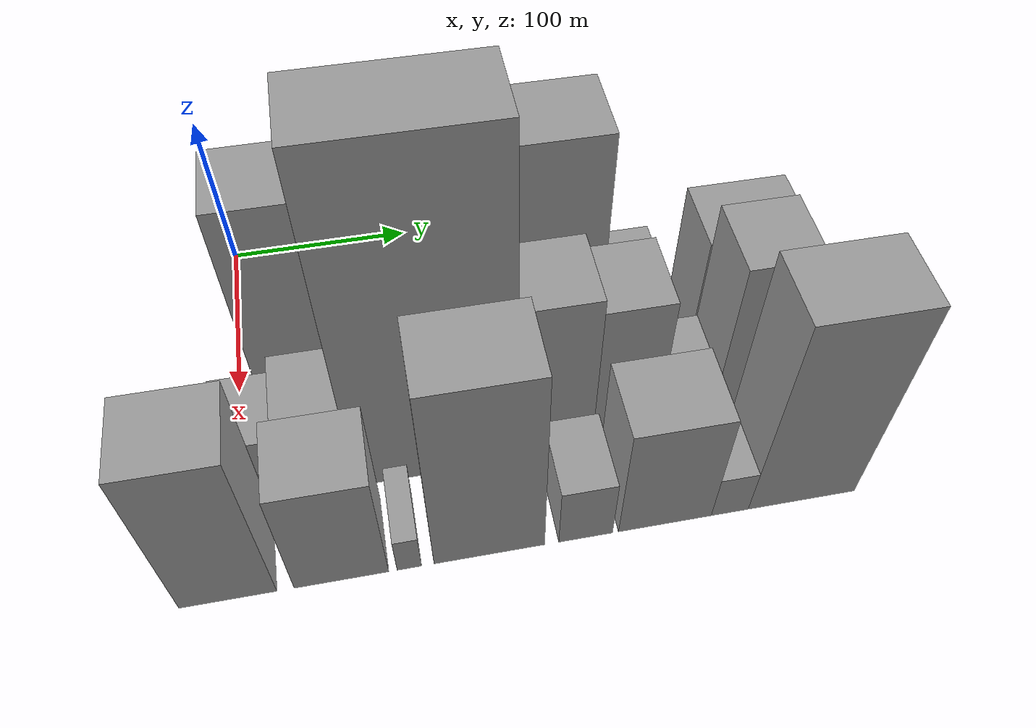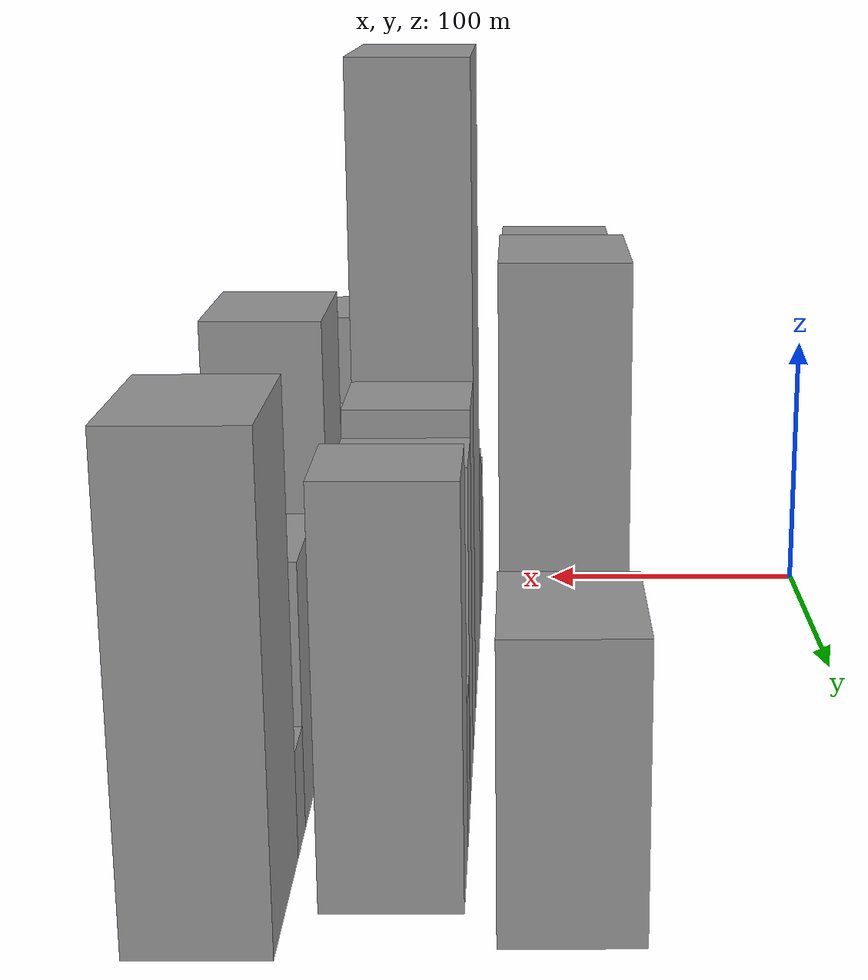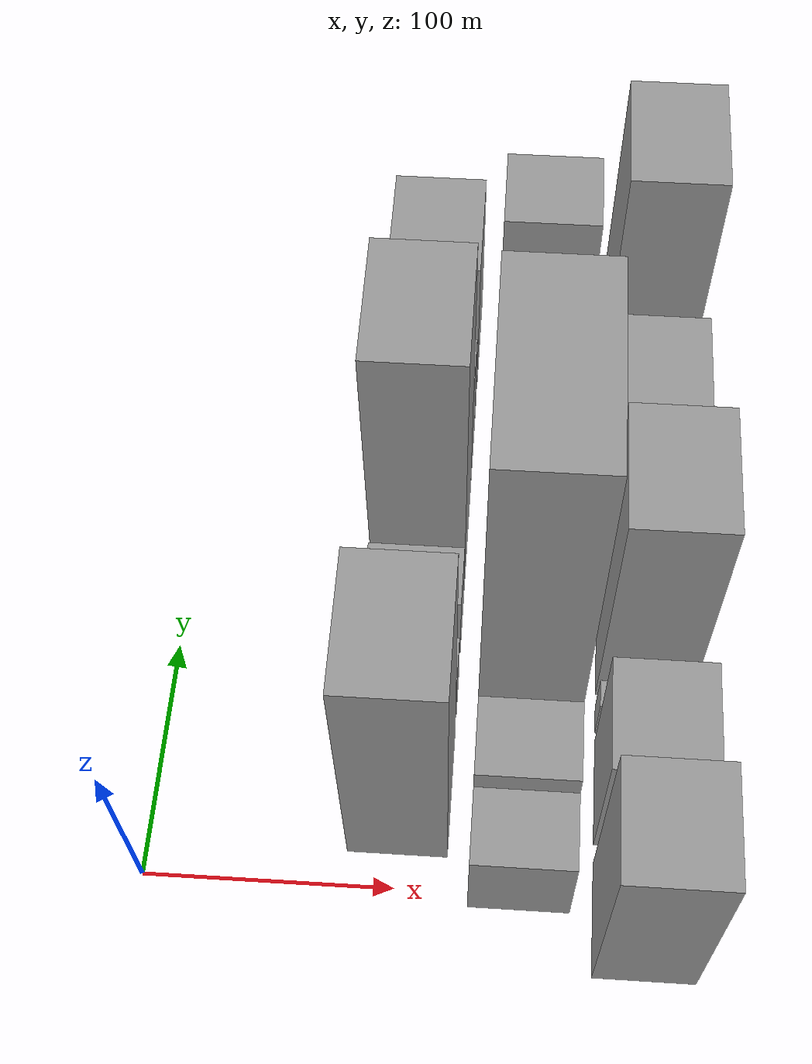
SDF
<sdf version="1.6">
 <world name="default">
  <model name="building_17">
   <static>1</static>
   <pose>100.0000 41.2047 0 0.000000 0.000000 0.000000</pose>
   <link name="link">
    <pose>0 0 75.00 0 0 0</pose>
    <collision name="collision"><geometry><box><size>40.0000 54.4174 150.0000</size></box></geometry></collision>
    <visual name="visual">
     <cast_shadows>0</cast_shadows>
     <geometry><box><size>40.0000 54.4174 150.0000</size></box></geometry>
     <material>
      <script>
       <uri>model://grey_wall/materials/scripts</uri>
       <uri>model://grey_wall/materials/textures</uri>
       <name>vrc/grey_wall</name>
      </script>
     </material>
    </visual>
   </link>
  </model>
  <model name="building_18">
   <static>1</static>
   <pose>100.0000 85.2992 0 0.000000 0.000000 0.000000</pose>
   <link name="link">
    <pose>0 0 16.50 0 0 0</pose>
    <collision name="collision"><geometry><box><size>40.0000 19.7715 33.0000</size></box></geometry></collision>
    <visual name="visual">
     <cast_shadows>0</cast_shadows>
     <geometry><box><size>40.0000 19.7715 33.0000</size></box></geometry>
     <material>
      <script>
       <uri>model://grey_wall/materials/scripts</uri>
       <uri>model://grey_wall/materials/textures</uri>
       <name>vrc/grey_wall</name>
      </script>
     </material>
    </visual>
   </link>
  </model>
  <model name="building_19">
   <static>1</static>
   <pose>100.0000 117.4299 0 0.000000 0.000000 0.000000</pose>
   <link name="link">
    <pose>0 0 22.50 0 0 0</pose>
    <collision name="collision"><geometry><box><size>40.0000 26.4899 45.0000</size></box></geometry></collision>
    <visual name="visual">
     <cast_shadows>0</cast_shadows>
     <geometry><box><size>40.0000 26.4899 45.0000</size></box></geometry>
     <material>
      <script>
       <uri>model://grey_wall/materials/scripts</uri>
       <uri>model://grey_wall/materials/textures</uri>
       <name>vrc/grey_wall</name>
      </script>
     </material>
    </visual>
   </link>
  </model>
  <model name="building_20">
   <static>1</static>
   <pose>100.0000 162.7504 0 0.000000 0.000000 0.000000</pose>
   <link name="link">
    <pose>0 0 82.50 0 0 0</pose>
    <collision name="collision"><geometry><box><size>40.0000 56.1511 165.0000</size></box></geometry></collision>
    <visual name="visual">
     <cast_shadows>0</cast_shadows>
     <geometry><box><size>40.0000 56.1511 165.0000</size></box></geometry>
     <material>
      <script>
       <uri>model://grey_wall/materials/scripts</uri>
       <uri>model://grey_wall/materials/textures</uri>
       <name>vrc/grey_wall</name>
      </script>
     </material>
    </visual>
   </link>
  </model>
  <model name="building_21">
   <static>1</static>
   <pose>100.0000 207.4724 0 0.000000 0.000000 0.000000</pose>
   <link name="link">
    <pose>0 0 31.50 0 0 0</pose>
    <collision name="collision"><geometry><box><size>40.0000 33.2930 63.0000</size></box></geometry></collision>
    <visual name="visual">
     <cast_shadows>0</cast_shadows>
     <geometry><box><size>40.0000 33.2930 63.0000</size></box></geometry>
     <material>
      <script>
       <uri>model://grey_wall/materials/scripts</uri>
       <uri>model://grey_wall/materials/textures</uri>
       <name>vrc/grey_wall</name>
      </script>
     </material>
    </visual>
   </link>
  </model>
  <model name="building_22">
   <static>1</static>
   <pose>100.0000 228.9524 0 0.000000 0.000000 0.000000</pose>
   <link name="link">
    <pose>0 0 12.00 0 0 0</pose>
    <collision name="collision"><geometry><box><size>40.0000 9.6670 24.0000</size></box></geometry></collision>
    <visual name="visual">
     <cast_shadows>0</cast_shadows>
     <geometry><box><size>40.0000 9.6670 24.0000</size></box></geometry>
     <material>
      <script>
       <uri>model://grey_wall/materials/scripts</uri>
       <uri>model://grey_wall/materials/textures</uri>
       <name>vrc/grey_wall</name>
      </script>
     </material>
    </visual>
   </link>
  </model>
  <model name="building_23">
   <static>1</static>
   <pose>100.0000 268.7100 0 0.000000 0.000000 0.000000</pose>
   <link name="link">
    <pose>0 0 43.50 0 0 0</pose>
    <collision name="collision"><geometry><box><size>40.0000 51.8483 87.0000</size></box></geometry></collision>
    <visual name="visual">
     <cast_shadows>0</cast_shadows>
     <geometry><box><size>40.0000 51.8483 87.0000</size></box></geometry>
     <material>
      <script>
       <uri>model://grey_wall/materials/scripts</uri>
       <uri>model://grey_wall/materials/textures</uri>
       <name>vrc/grey_wall</name>
      </script>
     </material>
    </visual>
   </link>
  </model>
  <model name="building_44">
   <static>1</static>
   <pose>149.0000 9.5778 0 0.000000 0.000000 0.000000</pose>
   <link name="link">
    <pose>0 0 25.50 0 0 0</pose>
    <collision name="collision"><geometry><box><size>40.0000 30.1677 51.0000</size></box></geometry></collision>
    <visual name="visual">
     <cast_shadows>0</cast_shadows>
     <geometry><box><size>40.0000 30.1677 51.0000</size></box></geometry>
     <material>
      <script>
       <uri>model://grey_wall/materials/scripts</uri>
       <uri>model://grey_wall/materials/textures</uri>
       <name>vrc/grey_wall</name>
      </script>
     </material>
    </visual>
   </link>
  </model>
  <model name="building_45">
   <static>1</static>
   <pose>149.0000 40.5013 0 0.000000 0.000000 0.000000</pose>
   <link name="link">
    <pose>0 0 31.50 0 0 0</pose>
    <collision name="collision"><geometry><box><size>40.0000 31.6792 63.0000</size></box></geometry></collision>
    <visual name="visual">
     <cast_shadows>0</cast_shadows>
     <geometry><box><size>40.0000 31.6792 63.0000</size></box></geometry>
     <material>
      <script>
       <uri>model://grey_wall/materials/scripts</uri>
       <uri>model://grey_wall/materials/textures</uri>
       <name>vrc/grey_wall</name>
      </script>
     </material>
    </visual>
   </link>
  </model>
  <model name="building_46">
   <static>1</static>
   <pose>149.0000 97.6787 0 0.000000 0.000000 0.000000</pose>
   <link name="link">
    <pose>0 0 111.00 0 0 0</pose>
    <collision name="collision"><geometry><box><size>40.0000 82.6757 222.0000</size></box></geometry></collision>
    <visual name="visual">
     <cast_shadows>0</cast_shadows>
     <geometry><box><size>40.0000 82.6757 222.0000</size></box></geometry>
     <material>
      <script>
       <uri>model://grey_wall/materials/scripts</uri>
       <uri>model://grey_wall/materials/textures</uri>
       <name>vrc/grey_wall</name>
      </script>
     </material>
    </visual>
   </link>
  </model>
  <model name="building_47">
   <static>1</static>
   <pose>149.0000 158.0164 0 0.000000 0.000000 0.000000</pose>
   <link name="link">
    <pose>0 0 58.50 0 0 0</pose>
    <collision name="collision"><geometry><box><size>40.0000 37.9998 117.0000</size></box></geometry></collision>
    <visual name="visual">
     <cast_shadows>0</cast_shadows>
     <geometry><box><size>40.0000 37.9998 117.0000</size></box></geometry>
     <material>
      <script>
       <uri>model://grey_wall/materials/scripts</uri>
       <uri>model://grey_wall/materials/textures</uri>
       <name>vrc/grey_wall</name>
      </script>
     </material>
    </visual>
   </link>
  </model>
  <model name="building_48">
   <static>1</static>
   <pose>149.0000 193.6412 0 0.000000 0.000000 0.000000</pose>
   <link name="link">
    <pose>0 0 54.00 0 0 0</pose>
    <collision name="collision"><geometry><box><size>40.0000 33.2498 108.0000</size></box></geometry></collision>
    <visual name="visual">
     <cast_shadows>0</cast_shadows>
     <geometry><box><size>40.0000 33.2498 108.0000</size></box></geometry>
     <material>
      <script>
       <uri>model://grey_wall/materials/scripts</uri>
       <uri>model://grey_wall/materials/textures</uri>
       <name>vrc/grey_wall</name>
      </script>
     </material>
    </visual>
   </link>
  </model>
  <model name="building_49">
   <static>1</static>
   <pose>149.0000 227.6740 0 0.000000 0.000000 0.000000</pose>
   <link name="link">
    <pose>0 0 22.50 0 0 0</pose>
    <collision name="collision"><geometry><box><size>40.0000 22.8158 45.0000</size></box></geometry></collision>
    <visual name="visual">
     <cast_shadows>0</cast_shadows>
     <geometry><box><size>40.0000 22.8158 45.0000</size></box></geometry>
     <material>
      <script>
       <uri>model://grey_wall/materials/scripts</uri>
       <uri>model://grey_wall/materials/textures</uri>
       <name>vrc/grey_wall</name>
      </script>
     </material>
    </visual>
   </link>
  </model>
  <model name="building_50">
   <static>1</static>
   <pose>149.0000 257.6221 0 0.000000 0.000000 0.000000</pose>
   <link name="link">
    <pose>0 0 61.50 0 0 0</pose>
    <collision name="collision"><geometry><box><size>40.0000 37.0804 123.0000</size></box></geometry></collision>
    <visual name="visual">
     <cast_shadows>0</cast_shadows>
     <geometry><box><size>40.0000 37.0804 123.0000</size></box></geometry>
     <material>
      <script>
       <uri>model://grey_wall/materials/scripts</uri>
       <uri>model://grey_wall/materials/textures</uri>
       <name>vrc/grey_wall</name>
      </script>
     </material>
    </visual>
   </link>
  </model>
  <model name="building_74">
   <static>1</static>
   <pose>198.0000 -7.6844 0 0.000000 0.000000 0.000000</pose>
   <link name="link">
    <pose>0 0 57.00 0 0 0</pose>
    <collision name="collision"><geometry><box><size>40.0000 44.8240 114.0000</size></box></geometry></collision>
    <visual name="visual">
     <cast_shadows>0</cast_shadows>
     <geometry><box><size>40.0000 44.8240 114.0000</size></box></geometry>
     <material>
      <script>
       <uri>model://grey_wall/materials/scripts</uri>
       <uri>model://grey_wall/materials/textures</uri>
       <name>vrc/grey_wall</name>
      </script>
     </material>
    </visual>
   </link>
  </model>
  <model name="building_75">
   <static>1</static>
   <pose>198.0000 44.9095 0 0.000000 0.000000 0.000000</pose>
   <link name="link">
    <pose>0 0 40.50 0 0 0</pose>
    <collision name="collision"><geometry><box><size>40.0000 44.3637 81.0000</size></box></geometry></collision>
    <visual name="visual">
     <cast_shadows>0</cast_shadows>
     <geometry><box><size>40.0000 44.3637 81.0000</size></box></geometry>
     <material>
      <script>
       <uri>model://grey_wall/materials/scripts</uri>
       <uri>model://grey_wall/materials/textures</uri>
       <name>vrc/grey_wall</name>
      </script>
     </material>
    </visual>
   </link>
  </model>
  <model name="building_76">
   <static>1</static>
   <pose>198.0000 76.8827 0 0.000000 0.000000 0.000000</pose>
   <link name="link">
    <pose>0 0 13.50 0 0 0</pose>
    <collision name="collision"><geometry><box><size>40.0000 11.5827 27.0000</size></box></geometry></collision>
    <visual name="visual">
     <cast_shadows>0</cast_shadows>
     <geometry><box><size>40.0000 11.5827 27.0000</size></box></geometry>
     <material>
      <script>
       <uri>model://grey_wall/materials/scripts</uri>
       <uri>model://grey_wall/materials/textures</uri>
       <name>vrc/grey_wall</name>
      </script>
     </material>
    </visual>
   </link>
  </model>
  <model name="building_77">
   <static>1</static>
   <pose>198.0000 115.4522 0 0.000000 0.000000 0.000000</pose>
   <link name="link">
    <pose>0 0 69.00 0 0 0</pose>
    <collision name="collision"><geometry><box><size>40.0000 53.5563 138.0000</size></box></geometry></collision>
    <visual name="visual">
     <cast_shadows>0</cast_shadows>
     <geometry><box><size>40.0000 53.5563 138.0000</size></box></geometry>
     <material>
      <script>
       <uri>model://grey_wall/materials/scripts</uri>
       <uri>model://grey_wall/materials/textures</uri>
       <name>vrc/grey_wall</name>
      </script>
     </material>
    </visual>
   </link>
  </model>
  <model name="building_78">
   <static>1</static>
   <pose>198.0000 162.5268 0 0.000000 0.000000 0.000000</pose>
   <link name="link">
    <pose>0 0 22.50 0 0 0</pose>
    <collision name="collision"><geometry><box><size>40.0000 26.5929 45.0000</size></box></geometry></collision>
    <visual name="visual">
     <cast_shadows>0</cast_shadows>
     <geometry><box><size>40.0000 26.5929 45.0000</size></box></geometry>
     <material>
      <script>
       <uri>model://grey_wall/materials/scripts</uri>
       <uri>model://grey_wall/materials/textures</uri>
       <name>vrc/grey_wall</name>
      </script>
     </material>
    </visual>
   </link>
  </model>
  <model name="building_79">
   <static>1</static>
   <pose>198.0000 202.2335 0 0.000000 0.000000 0.000000</pose>
   <link name="link">
    <pose>0 0 42.00 0 0 0</pose>
    <collision name="collision"><geometry><box><size>40.0000 46.8204 84.0000</size></box></geometry></collision>
    <visual name="visual">
     <cast_shadows>0</cast_shadows>
     <geometry><box><size>40.0000 46.8204 84.0000</size></box></geometry>
     <material>
      <script>
       <uri>model://grey_wall/materials/scripts</uri>
       <uri>model://grey_wall/materials/textures</uri>
       <name>vrc/grey_wall</name>
      </script>
     </material>
    </visual>
   </link>
  </model>
  <model name="building_80">
   <static>1</static>
   <pose>198.0000 235.1044 0 0.000000 0.000000 0.000000</pose>
   <link name="link">
    <pose>0 0 16.50 0 0 0</pose>
    <collision name="collision"><geometry><box><size>40.0000 18.9214 33.0000</size></box></geometry></collision>
    <visual name="visual">
     <cast_shadows>0</cast_shadows>
     <geometry><box><size>40.0000 18.9214 33.0000</size></box></geometry>
     <material>
      <script>
       <uri>model://grey_wall/materials/scripts</uri>
       <uri>model://grey_wall/materials/textures</uri>
       <name>vrc/grey_wall</name>
      </script>
     </material>
    </visual>
   </link>
  </model>
  <model name="building_81">
   <static>1</static>
   <pose>198.0000 272.1591 0 0.000000 0.000000 0.000000</pose>
   <link name="link">
    <pose>0 0 72.00 0 0 0</pose>
    <collision name="collision"><geometry><box><size>40.0000 55.1880 144.0000</size></box></geometry></collision>
    <visual name="visual">
     <cast_shadows>0</cast_shadows>
     <geometry><box><size>40.0000 55.1880 144.0000</size></box></geometry>
     <material>
      <script>
       <uri>model://grey_wall/materials/scripts</uri>
       <uri>model://grey_wall/materials/textures</uri>
       <name>vrc/grey_wall</name>
      </script>
     </material>
    </visual>
   </link>
  </model>
 </world>
</sdf>
